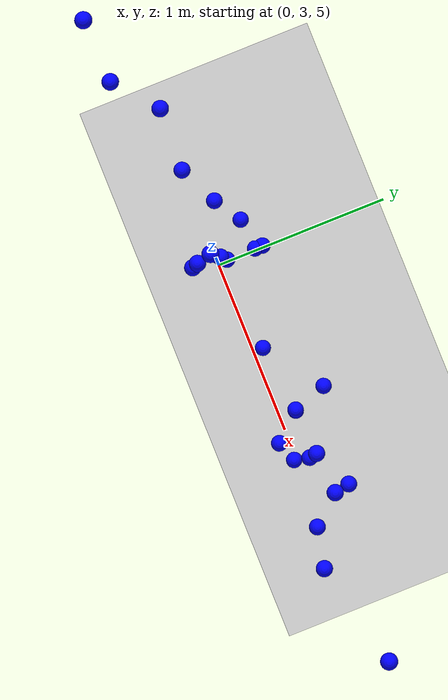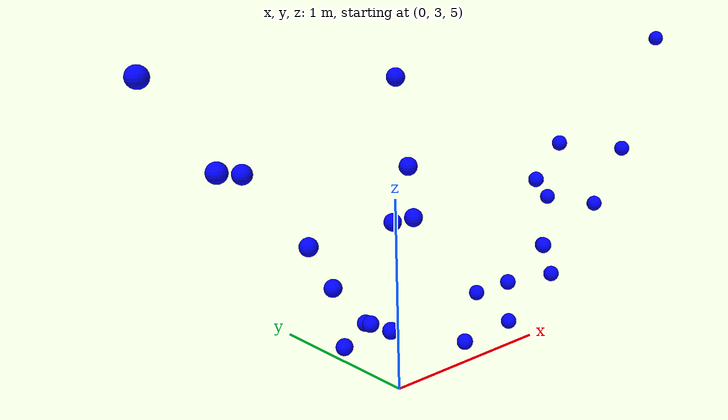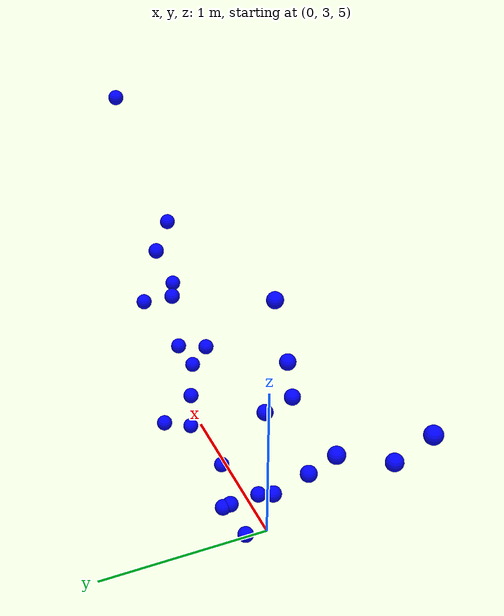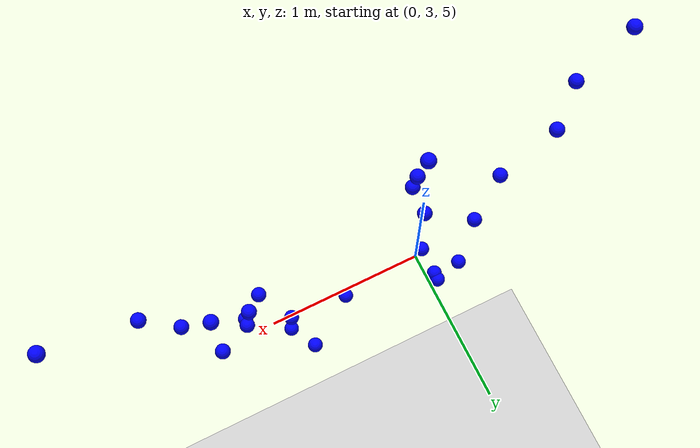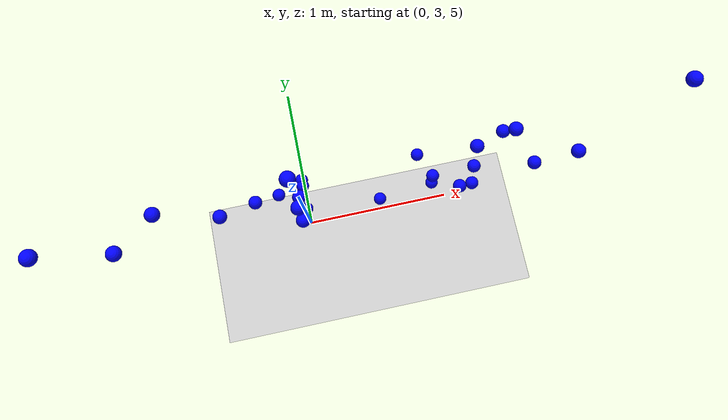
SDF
<sdf version="1.10">
 <world name="sphere">
  <scene>
   <ambient>1 1 1 1</ambient>
   <background>0.800000012 0.800000012 0.800000012 1</background>
   <shadows>true</shadows>
  </scene>
  <gravity>0 0 -9.8000000000000007</gravity>
  <magnetic_field>5.5644999999999998e-06 2.2875799999999999e-05 -4.2388400000000002e-05</magnetic_field>
  <atmosphere type="adiabatic"/>
  <physics type="ode">
   <max_step_size>0.001</max_step_size>
   <real_time_factor>1</real_time_factor>
   <real_time_update_rate>1000</real_time_update_rate>
  </physics>
  <model name="ground_plane">
   <static>true</static>
   <link name="link">
    <collision name="collision">
     <geometry><plane><normal>0 0 1</normal><size>100 100</size></plane></geometry>
    </collision>
    <visual name="visual">
     <geometry><plane><normal>0 0 1</normal><size>100 100</size></plane></geometry>
     <material>
      <ambient>0.800000012 0.800000012 0.800000012 1</ambient>
      <diffuse>0.800000012 0.800000012 0.800000012 1</diffuse>
      <specular>0.800000012 0.800000012 0.800000012 1</specular>
     </material>
    </visual>
    <inertial>
     <mass>1</mass>
     <inertia><ixx>1</ixx><ixy>0</ixy><ixz>0</ixz><iyy>1</iyy><iyz>0</iyz><izz>1</izz></inertia>
    </inertial>
   </link>
  </model>
  <model name="sphere_00">
   <pose>-0.8101000189781189 3.01882004737854 6.2474203109741211 0 0 0</pose>
   <link name="sphere_link">
    <inertial>
     <inertia>
      <ixx>0.10000000000000001</ixx>
      <ixy>0</ixy>
      <ixz>0</ixz>
      <iyy>0.10000000000000001</iyy>
      <iyz>0</iyz>
      <izz>0.10000000000000001</izz>
     </inertia>
     <mass>1</mass>
    </inertial>
    <collision name="sphere_collision">
     <geometry><sphere><radius>0.044999999999999998</radius></sphere></geometry>
    </collision>
    <visual name="sphere_visual">
     <geometry><sphere><radius>0.044999999999999998</radius></sphere></geometry>
     <material><ambient>0 0 1 1</ambient><diffuse>0 0 1 1</diffuse><specular>0 0 1 1</specular></material>
    </visual>
   </link>
   <static>false</static>
   <self_collide>true</self_collide>
  </model>
  <model name="sphere_01">
   <pose>-0.30862641334533691 3.1076400279998779 5.5938301086425781 0 0 0</pose>
   <link name="sphere_link">
    <inertial>
     <inertia>
      <ixx>0.10000000000000001</ixx>
      <ixy>0</ixy>
      <ixz>0</ixz>
      <iyy>0.10000000000000001</iyy>
      <iyz>0</iyz>
      <izz>0.10000000000000001</izz>
     </inertia>
     <mass>1</mass>
    </inertial>
    <collision name="sphere_collision">
     <geometry><sphere><radius>0.044999999999999998</radius></sphere></geometry>
    </collision>
    <visual name="sphere_visual">
     <geometry><sphere><radius>0.044999999999999998</radius></sphere></geometry>
     <material><ambient>0 0 1 1</ambient><diffuse>0 0 1 1</diffuse><specular>0 0 1 1</specular></material>
    </visual>
   </link>
   <static>false</static>
   <self_collide>true</self_collide>
  </model>
  <model name="sphere_02">
   <pose>-0.18142400681972504 3.2076399326324463 5.2198047637939453 0 0 0</pose>
   <link name="sphere_link">
    <inertial>
     <inertia>
      <ixx>0.10000000000000001</ixx>
      <ixy>0</ixy>
      <ixz>0</ixz>
      <iyy>0.10000000000000001</iyy>
      <iyz>0</iyz>
      <izz>0.10000000000000001</izz>
     </inertia>
     <mass>1</mass>
    </inertial>
    <collision name="sphere_collision">
     <geometry><sphere><radius>0.044999999999999998</radius></sphere></geometry>
    </collision>
    <visual name="sphere_visual">
     <geometry><sphere><radius>0.044999999999999998</radius></sphere></geometry>
     <material><ambient>0 0 1 1</ambient><diffuse>0 0 1 1</diffuse><specular>0 0 1 1</specular></material>
    </visual>
   </link>
   <static>false</static>
   <self_collide>true</self_collide>
  </model>
  <model name="sphere_03">
   <pose>1.3758639097213745 3.2076399326324463 5.7371301651000977 0 0 0</pose>
   <link name="sphere_link">
    <inertial>
     <inertia>
      <ixx>0.10000000000000001</ixx>
      <ixy>0</ixy>
      <ixz>0</ixz>
      <iyy>0.10000000000000001</iyy>
      <iyz>0</iyz>
      <izz>0.10000000000000001</izz>
     </inertia>
     <mass>1</mass>
    </inertial>
    <collision name="sphere_collision">
     <geometry><sphere><radius>0.044999999999999998</radius></sphere></geometry>
    </collision>
    <visual name="sphere_visual">
     <geometry><sphere><radius>0.044999999999999998</radius></sphere></geometry>
     <material><ambient>0 0 1 1</ambient><diffuse>0 0 1 1</diffuse><specular>0 0 1 1</specular></material>
    </visual>
   </link>
   <static>false</static>
   <self_collide>true</self_collide>
  </model>
  <model name="sphere_04">
   <pose>0.90909630060195923 3.0961899757385254 5.3272900581359863 0 0 0</pose>
   <link name="sphere_link">
    <inertial>
     <inertia>
      <ixx>0.10000000000000001</ixx>
      <ixy>0</ixy>
      <ixz>0</ixz>
      <iyy>0.10000000000000001</iyy>
      <iyz>0</iyz>
      <izz>0.10000000000000001</izz>
     </inertia>
     <mass>1</mass>
    </inertial>
    <collision name="sphere_collision">
     <geometry><sphere><radius>0.044999999999999998</radius></sphere></geometry>
    </collision>
    <visual name="sphere_visual">
     <geometry><sphere><radius>0.044999999999999998</radius></sphere></geometry>
     <material><ambient>0 0 1 1</ambient><diffuse>0 0 1 1</diffuse><specular>0 0 1 1</specular></material>
    </visual>
   </link>
   <static>false</static>
   <self_collide>true</self_collide>
  </model>
  <model name="sphere_05">
   <pose>0 3.023277759552002 5.8801798820495605 0 0 0</pose>
   <link name="sphere_link">
    <inertial>
     <inertia>
      <ixx>0.10000000000000001</ixx>
      <ixy>0</ixy>
      <ixz>0</ixz>
      <iyy>0.10000000000000001</iyy>
      <iyz>0</iyz>
      <izz>0.10000000000000001</izz>
     </inertia>
     <mass>1</mass>
    </inertial>
    <collision name="sphere_collision">
     <geometry><sphere><radius>0.044999999999999998</radius></sphere></geometry>
    </collision>
    <visual name="sphere_visual">
     <geometry><sphere><radius>0.044999999999999998</radius></sphere></geometry>
     <material><ambient>0 0 1 1</ambient><diffuse>0 0 1 1</diffuse><specular>0 0 1 1</specular></material>
    </visual>
   </link>
   <static>false</static>
   <self_collide>true</self_collide>
  </model>
  <model name="sphere_06">
   <pose>0.52478998899459839 3.0577552318572998 5.0836100578308105 0 0 0</pose>
   <link name="sphere_link">
    <inertial>
     <inertia>
      <ixx>0.10000000000000001</ixx>
      <ixy>0</ixy>
      <ixz>0</ixz>
      <iyy>0.10000000000000001</iyy>
      <iyz>0</iyz>
      <izz>0.10000000000000001</izz>
     </inertia>
     <mass>1</mass>
     <pose>0 0 0.69999999999999996 0 0 0</pose>
    </inertial>
    <collision name="sphere_collision">
     <geometry><sphere><radius>0.044999999999999998</radius></sphere></geometry>
    </collision>
    <visual name="sphere_visual">
     <geometry><sphere><radius>0.044999999999999998</radius></sphere></geometry>
     <material><ambient>0 0 1 1</ambient><diffuse>0 0 1 1</diffuse><specular>0 0 1 1</specular></material>
    </visual>
   </link>
   <static>false</static>
   <self_collide>true</self_collide>
  </model>
  <model name="sphere_07">
   <pose>0.84674131870269775 3.2901899814605713 5.2275600433349609 0 0 0</pose>
   <link name="sphere_link">
    <inertial>
     <inertia>
      <ixx>0.10000000000000001</ixx>
      <ixy>0</ixy>
      <ixz>0</ixz>
      <iyy>0.10000000000000001</iyy>
      <iyz>0</iyz>
      <izz>0.10000000000000001</izz>
     </inertia>
     <mass>1</mass>
    </inertial>
    <collision name="sphere_collision">
     <geometry><sphere><radius>0.044999999999999998</radius></sphere></geometry>
    </collision>
    <visual name="sphere_visual">
     <geometry><sphere><radius>0.044999999999999998</radius></sphere></geometry>
     <material><ambient>0 0 1 1</ambient><diffuse>0 0 1 1</diffuse><specular>0 0 1 1</specular></material>
    </visual>
   </link>
   <static>false</static>
   <self_collide>true</self_collide>
  </model>
  <model name="sphere_08">
   <pose>0 3.0543978214263916 5.3013801574707031 0 0 0</pose>
   <link name="sphere_link">
    <inertial>
     <inertia>
      <ixx>0.10000000000000001</ixx>
      <ixy>0</ixy>
      <ixz>0</ixz>
      <iyy>0.10000000000000001</iyy>
      <iyz>0</iyz>
      <izz>0.10000000000000001</izz>
     </inertia>
     <mass>1</mass>
    </inertial>
    <collision name="sphere_collision">
     <geometry><sphere><radius>0.044999999999999998</radius></sphere></geometry>
    </collision>
    <visual name="sphere_visual">
     <geometry><sphere><radius>0.044999999999999998</radius></sphere></geometry>
     <material><ambient>0 0 1 1</ambient><diffuse>0 0 1 1</diffuse><specular>0 0 1 1</specular></material>
    </visual>
   </link>
   <static>false</static>
   <self_collide>true</self_collide>
  </model>
  <model name="sphere_09">
   <pose>-0.50494199991226196 3.0061700344085693 5.8660669326782227 0 0 0</pose>
   <link name="sphere_link">
    <inertial>
     <inertia>
      <ixx>0.10000000000000001</ixx>
      <ixy>0</ixy>
      <ixz>0</ixz>
      <iyy>0.10000000000000001</iyy>
      <iyz>0</iyz>
      <izz>0.10000000000000001</izz>
     </inertia>
     <mass>1</mass>
     <pose>0 0 0.69999999999999996 0 0 0</pose>
    </inertial>
    <collision name="sphere_collision">
     <geometry><sphere><radius>0.044999999999999998</radius></sphere></geometry>
    </collision>
    <visual name="sphere_visual">
     <geometry><sphere><radius>0.044999999999999998</radius></sphere></geometry>
     <material><ambient>0 0 1 1</ambient><diffuse>0 0 1 1</diffuse><specular>0 0 1 1</specular></material>
    </visual>
   </link>
   <static>false</static>
   <self_collide>true</self_collide>
  </model>
  <model name="sphere_10">
   <pose>0 3.2213499546051025 5.2891402244567871 0 0 0</pose>
   <link name="sphere_link">
    <inertial>
     <inertia>
      <ixx>0.10000000000000001</ixx>
      <ixy>0</ixy>
      <ixz>0</ixz>
      <iyy>0.10000000000000001</iyy>
      <iyz>0</iyz>
      <izz>0.10000000000000001</izz>
     </inertia>
     <mass>1</mass>
     <pose>0 0 0.69999999999999996 0 0 0</pose>
    </inertial>
    <collision name="sphere_collision">
     <geometry><sphere><radius>0.044999999999999998</radius></sphere></geometry>
    </collision>
    <visual name="sphere_visual">
     <geometry><sphere><radius>0.044999999999999998</radius></sphere></geometry>
     <material><ambient>0 0 1 1</ambient><diffuse>0 0 1 1</diffuse><specular>0 0 1 1</specular></material>
    </visual>
   </link>
   <static>false</static>
   <self_collide>true</self_collide>
  </model>
  <model name="sphere_11">
   <pose>0 2.9791254997253418 6.5953397750854492 0 0 0</pose>
   <link name="sphere_link">
    <inertial>
     <inertia>
      <ixx>0.10000000000000001</ixx>
      <ixy>0</ixy>
      <ixz>0</ixz>
      <iyy>0.10000000000000001</iyy>
      <iyz>0</iyz>
      <izz>0.10000000000000001</izz>
     </inertia>
     <mass>1</mass>
     <pose>0 0 0.69999999999999996 0 0 0</pose>
    </inertial>
    <collision name="sphere_collision">
     <geometry><sphere><radius>0.044999999999999998</radius></sphere></geometry>
    </collision>
    <visual name="sphere_visual">
     <geometry><sphere><radius>0.044999999999999998</radius></sphere></geometry>
     <material><ambient>0 0 1 1</ambient><diffuse>0 0 1 1</diffuse><specular>0 0 1 1</specular></material>
    </visual>
   </link>
   <static>false</static>
   <self_collide>true</self_collide>
  </model>
  <model name="sphere_12">
   <pose>1.1540199518203735 3.1078150272369385 5.8965902328491211 0 0 0</pose>
   <link name="sphere_link">
    <inertial>
     <inertia>
      <ixx>0.10000000000000001</ixx>
      <ixy>0</ixy>
      <ixz>0</ixz>
      <iyy>0.10000000000000001</iyy>
      <iyz>0</iyz>
      <izz>0.10000000000000001</izz>
     </inertia>
     <mass>1</mass>
     <pose>0 0 0.69999999999999996 0 0 0</pose>
    </inertial>
    <collision name="sphere_collision">
     <geometry><sphere><radius>0.044999999999999998</radius></sphere></geometry>
    </collision>
    <visual name="sphere_visual">
     <geometry><sphere><radius>0.044999999999999998</radius></sphere></geometry>
     <material><ambient>0 0 1 1</ambient><diffuse>0 0 1 1</diffuse><specular>0 0 1 1</specular></material>
    </visual>
   </link>
   <static>false</static>
   <self_collide>true</self_collide>
  </model>
  <model name="sphere_13">
   <pose>0 3.2651400566101074 5.282097339630127 0 0 0</pose>
   <link name="sphere_link">
    <inertial>
     <inertia>
      <ixx>0.10000000000000001</ixx>
      <ixy>0</ixy>
      <ixz>0</ixz>
      <iyy>0.10000000000000001</iyy>
      <iyz>0</iyz>
      <izz>0.10000000000000001</izz>
     </inertia>
     <mass>1</mass>
     <pose>0 0 0.69999999999999996 0 0 0</pose>
    </inertial>
    <collision name="sphere_collision">
     <geometry><sphere><radius>0.044999999999999998</radius></sphere></geometry>
    </collision>
    <visual name="sphere_visual">
     <geometry><sphere><radius>0.044999999999999998</radius></sphere></geometry>
     <material><ambient>0 0 1 1</ambient><diffuse>0 0 1 1</diffuse><specular>0 0 1 1</specular></material>
    </visual>
   </link>
   <static>false</static>
   <self_collide>true</self_collide>
  </model>
  <model name="sphere_14">
   <pose>1.0408979654312134 2.9444799423217773 5.5553398132324219 0 0 0</pose>
   <link name="sphere_link">
    <inertial>
     <inertia>
      <ixx>0.10000000000000001</ixx>
      <ixy>0</ixy>
      <ixz>0</ixz>
      <iyy>0.10000000000000001</iyy>
      <iyz>0</iyz>
      <izz>0.10000000000000001</izz>
     </inertia>
     <mass>1</mass>
     <pose>0 0 0.69999999999999996 0 0 0</pose>
    </inertial>
    <collision name="sphere_collision">
     <geometry><sphere><radius>0.044999999999999998</radius></sphere></geometry>
    </collision>
    <visual name="sphere_visual">
     <geometry><sphere><radius>0.044999999999999998</radius></sphere></geometry>
     <material><ambient>0 0 1 1</ambient><diffuse>0 0 1 1</diffuse><specular>0 0 1 1</specular></material>
    </visual>
   </link>
   <static>false</static>
   <self_collide>true</self_collide>
  </model>
  <model name="sphere_15">
   <pose>0 2.8993566036224365 6.1798100471496582 0 0 0</pose>
   <link name="sphere_link">
    <inertial>
     <inertia>
      <ixx>0.10000000000000001</ixx>
      <ixy>0</ixy>
      <ixz>0</ixz>
      <iyy>0.10000000000000001</iyy>
      <iyz>0</iyz>
      <izz>0.10000000000000001</izz>
     </inertia>
     <mass>1</mass>
     <pose>0 0 0.69999999999999996 0 0 0</pose>
    </inertial>
    <collision name="sphere_collision">
     <geometry><sphere><radius>0.044999999999999998</radius></sphere></geometry>
    </collision>
    <visual name="sphere_visual">
     <geometry><sphere><radius>0.044999999999999998</radius></sphere></geometry>
     <material><ambient>0 0 1 1</ambient><diffuse>0 0 1 1</diffuse><specular>0 0 1 1</specular></material>
    </visual>
   </link>
   <static>false</static>
   <self_collide>true</self_collide>
  </model>
  <model name="sphere_16">
   <pose>-1.3119097948074341 2.8261098861694336 6.7110099792480469 0 0 0</pose>
   <link name="sphere_link">
    <inertial>
     <inertia>
      <ixx>0.10000000000000001</ixx>
      <ixy>0</ixy>
      <ixz>0</ixz>
      <iyy>0.10000000000000001</iyy>
      <iyz>0</iyz>
      <izz>0.10000000000000001</izz>
     </inertia>
     <mass>1</mass>
     <pose>0 0 0.69999999999999996 0 0 0</pose>
    </inertial>
    <collision name="sphere_collision">
     <geometry><sphere><radius>0.044999999999999998</radius></sphere></geometry>
    </collision>
    <visual name="sphere_visual">
     <geometry><sphere><radius>0.044999999999999998</radius></sphere></geometry>
     <material><ambient>0 0 1 1</ambient><diffuse>0 0 1 1</diffuse><specular>0 0 1 1</specular></material>
    </visual>
   </link>
   <static>false</static>
   <self_collide>true</self_collide>
  </model>
  <model name="sphere_17">
   <pose>1.1766971349716187 3.0682199001312256 5.5024600028991699 0 0 0</pose>
   <link name="sphere_link">
    <inertial>
     <inertia>
      <ixx>0.10000000000000001</ixx>
      <ixy>0</ixy>
      <ixz>0</ixz>
      <iyy>0.10000000000000001</iyy>
      <iyz>0</iyz>
      <izz>0.10000000000000001</izz>
     </inertia>
     <mass>1</mass>
     <pose>0 0 0.69999999999999996 0 0 0</pose>
    </inertial>
    <collision name="sphere_collision">
     <geometry><sphere><radius>0.044999999999999998</radius></sphere></geometry>
    </collision>
    <visual name="sphere_visual">
     <geometry><sphere><radius>0.044999999999999998</radius></sphere></geometry>
     <material><ambient>0 0 1 1</ambient><diffuse>0 0 1 1</diffuse><specular>0 0 1 1</specular></material>
    </visual>
   </link>
   <static>false</static>
   <self_collide>true</self_collide>
  </model>
  <model name="sphere_18">
   <pose>1.3726999759674072 3.1196067333221436 6.0826001167297363 0 0 0</pose>
   <link name="sphere_link">
    <inertial>
     <inertia>
      <ixx>0.10000000000000001</ixx>
      <ixy>0</ixy>
      <ixz>0</ixz>
      <iyy>0.10000000000000001</iyy>
      <iyz>0</iyz>
      <izz>0.10000000000000001</izz>
     </inertia>
     <mass>1</mass>
     <pose>0 0 0.69999999999999996 0 0 0</pose>
    </inertial>
    <collision name="sphere_collision">
     <geometry><sphere><radius>0.044999999999999998</radius></sphere></geometry>
    </collision>
    <visual name="sphere_visual">
     <geometry><sphere><radius>0.044999999999999998</radius></sphere></geometry>
     <material><ambient>0 0 1 1</ambient><diffuse>0 0 1 1</diffuse><specular>0 0 1 1</specular></material>
    </visual>
   </link>
   <static>false</static>
   <self_collide>true</self_collide>
  </model>
  <model name="sphere_19">
   <pose>0 2.8662335872650146 5.9346098899841309 0 0 0</pose>
   <link name="sphere_link">
    <inertial>
     <inertia>
      <ixx>0.10000000000000001</ixx>
      <ixy>0</ixy>
      <ixz>0</ixz>
      <iyy>0.10000000000000001</iyy>
      <iyz>0</iyz>
      <izz>0.10000000000000001</izz>
     </inertia>
     <mass>1</mass>
     <pose>0 0 0.69999999999999996 0 0 0</pose>
    </inertial>
    <collision name="sphere_collision">
     <geometry><sphere><radius>0.044999999999999998</radius></sphere></geometry>
    </collision>
    <visual name="sphere_visual">
     <geometry><sphere><radius>0.044999999999999998</radius></sphere></geometry>
     <material><ambient>0 0 1 1</ambient><diffuse>0 0 1 1</diffuse><specular>0 0 1 1</specular></material>
    </visual>
   </link>
   <static>false</static>
   <self_collide>true</self_collide>
  </model>
  <model name="sphere_20">
   <pose>1.5283499956130981 2.966209888458252 5.7112307548522949 0 0 0</pose>
   <link name="sphere_link">
    <inertial>
     <inertia>
      <ixx>0.10000000000000001</ixx>
      <ixy>0</ixy>
      <ixz>0</ixz>
      <iyy>0.10000000000000001</iyy>
      <iyz>0</iyz>
      <izz>0.10000000000000001</izz>
     </inertia>
     <mass>1</mass>
     <pose>0 0 0.69999999999999996 0 0 0</pose>
    </inertial>
    <collision name="sphere_collision">
     <geometry><sphere><radius>0.044999999999999998</radius></sphere></geometry>
    </collision>
    <visual name="sphere_visual">
     <geometry><sphere><radius>0.044999999999999998</radius></sphere></geometry>
     <material><ambient>0 0 1 1</ambient><diffuse>0 0 1 1</diffuse><specular>0 0 1 1</specular></material>
    </visual>
   </link>
   <static>false</static>
   <self_collide>true</self_collide>
  </model>
  <model name="sphere_21">
   <pose>2.2217419147491455 3.0480799674987793 6.6627101898193359 0 0 0</pose>
   <link name="sphere_link">
    <inertial>
     <inertia>
      <ixx>0.10000000000000001</ixx>
      <ixy>0</ixy>
      <ixz>0</ixz>
      <iyy>0.10000000000000001</iyy>
      <iyz>0</iyz>
      <izz>0.10000000000000001</izz>
     </inertia>
     <mass>1</mass>
     <pose>0 0 0.69999999999999996 0 0 0</pose>
    </inertial>
    <collision name="sphere_collision">
     <geometry><sphere><radius>0.044999999999999998</radius></sphere></geometry>
    </collision>
    <visual name="sphere_visual">
     <geometry><sphere><radius>0.044999999999999998</radius></sphere></geometry>
     <material><ambient>0 0 1 1</ambient><diffuse>0 0 1 1</diffuse><specular>0 0 1 1</specular></material>
    </visual>
   </link>
   <static>false</static>
   <self_collide>true</self_collide>
  </model>
  <model name="sphere_22">
   <pose>-1.0258909463882446 2.8320400714874268 6.3174500465393066 0 0 0</pose>
   <link name="sphere_link">
    <inertial>
     <inertia>
      <ixx>0.10000000000000001</ixx>
      <ixy>0</ixy>
      <ixz>0</ixz>
      <iyy>0.10000000000000001</iyy>
      <iyz>0</iyz>
      <izz>0.10000000000000001</izz>
     </inertia>
     <mass>1</mass>
     <pose>0 0 0.69999999999999996 0 0 0</pose>
    </inertial>
    <collision name="sphere_collision">
     <geometry><sphere><radius>0.044999999999999998</radius></sphere></geometry>
    </collision>
    <visual name="sphere_visual">
     <geometry><sphere><radius>0.044999999999999998</radius></sphere></geometry>
     <material><ambient>0 0 1 1</ambient><diffuse>0 0 1 1</diffuse><specular>0 0 1 1</specular></material>
    </visual>
   </link>
   <static>false</static>
   <self_collide>true</self_collide>
  </model>
  <model name="sphere_23">
   <pose>1.7234451770782471 2.9191300868988037 6.0306200981140137 0 0 0</pose>
   <link name="sphere_link">
    <inertial>
     <inertia>
      <ixx>0.10000000000000001</ixx>
      <ixy>0</ixy>
      <ixz>0</ixz>
      <iyy>0.10000000000000001</iyy>
      <iyz>0</iyz>
      <izz>0.10000000000000001</izz>
     </inertia>
     <mass>1</mass>
     <pose>0 0 0.69999999999999996 0 0 0</pose>
    </inertial>
    <collision name="sphere_collision">
     <geometry><sphere><radius>0.044999999999999998</radius></sphere></geometry>
    </collision>
    <visual name="sphere_visual">
     <geometry><sphere><radius>0.044999999999999998</radius></sphere></geometry>
     <material><ambient>0 0 1 1</ambient><diffuse>0 0 1 1</diffuse><specular>0 0 1 1</specular></material>
    </visual>
   </link>
   <static>false</static>
   <self_collide>true</self_collide>
  </model>
  <model name="sphere_24">
   <pose>0.920390784740448 3.0976099967956543 5.0828800201416016 0 0 0</pose>
   <link name="sphere_link">
    <inertial>
     <inertia>
      <ixx>0.10000000000000001</ixx>
      <ixy>0</ixy>
      <ixz>0</ixz>
      <iyy>0.10000000000000001</iyy>
      <iyz>0</iyz>
      <izz>0.10000000000000001</izz>
     </inertia>
     <mass>1</mass>
     <pose>0 0 0.69999999999999996 0 0 0</pose>
    </inertial>
    <collision name="sphere_collision">
     <geometry><sphere><radius>0.044999999999999998</radius></sphere></geometry>
    </collision>
    <visual name="sphere_visual">
     <geometry><sphere><radius>0.044999999999999998</radius></sphere></geometry>
     <material><ambient>0 0 1 1</ambient><diffuse>0 0 1 1</diffuse><specular>0 0 1 1</specular></material>
    </visual>
   </link>
   <static>false</static>
   <self_collide>true</self_collide>
  </model>
  <model name="sphere_25">
   <pose>1.1628700494766235 2.9856400489807129 5.3452863693237305 0 0 0</pose>
   <link name="sphere_link">
    <inertial>
     <inertia>
      <ixx>0.10000000000000001</ixx>
      <ixy>0</ixy>
      <ixz>0</ixz>
      <iyy>0.10000000000000001</iyy>
      <iyz>0</iyz>
      <izz>0.10000000000000001</izz>
     </inertia>
     <mass>1</mass>
     <pose>0 0 0.69999999999999996 0 0 0</pose>
    </inertial>
    <collision name="sphere_collision">
     <geometry><sphere><radius>0.044999999999999998</radius></sphere></geometry>
    </collision>
    <visual name="sphere_visual">
     <geometry><sphere><radius>0.044999999999999998</radius></sphere></geometry>
     <material><ambient>0 0 1 1</ambient><diffuse>0 0 1 1</diffuse><specular>0 0 1 1</specular></material>
    </visual>
   </link>
   <static>false</static>
   <self_collide>true</self_collide>
  </model>
  <light name="sun" type="directional">
   <pose>0 0 10 0 0 0</pose>
   <intensity>1</intensity>
   <direction>-0.5 0.10000000000000001 -0.90000000000000002</direction>
   <diffuse>0.800000012 0.800000012 0.800000012 1</diffuse>
   <specular>0.200000003 0.200000003 0.200000003 1</specular>
   <attenuation>
    <range>1000</range>
    <linear>0.01</linear>
    <constant>0.90000000000000002</constant>
    <quadratic>0.001</quadratic>
   </attenuation>
   <spot><inner_angle>0</inner_angle><outer_angle>0</outer_angle><falloff>0</falloff></spot>
  </light>
 </world>
</sdf>
